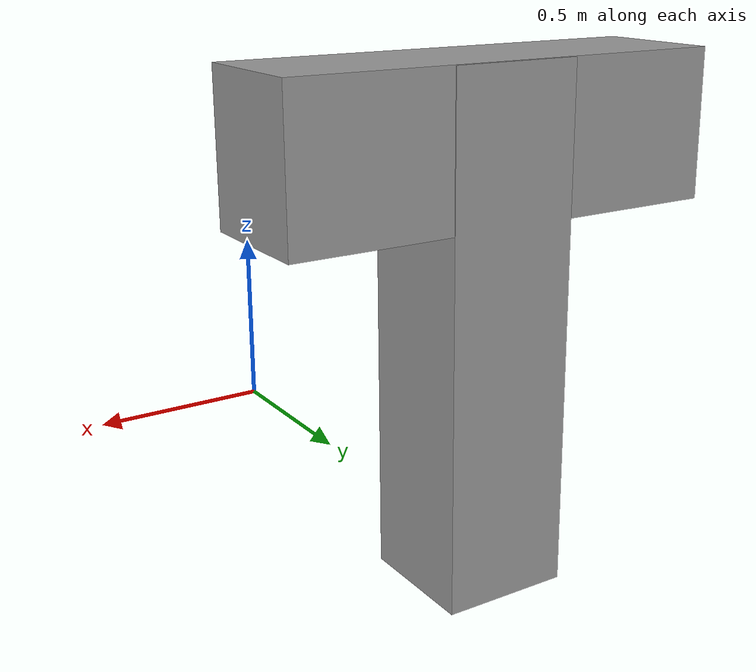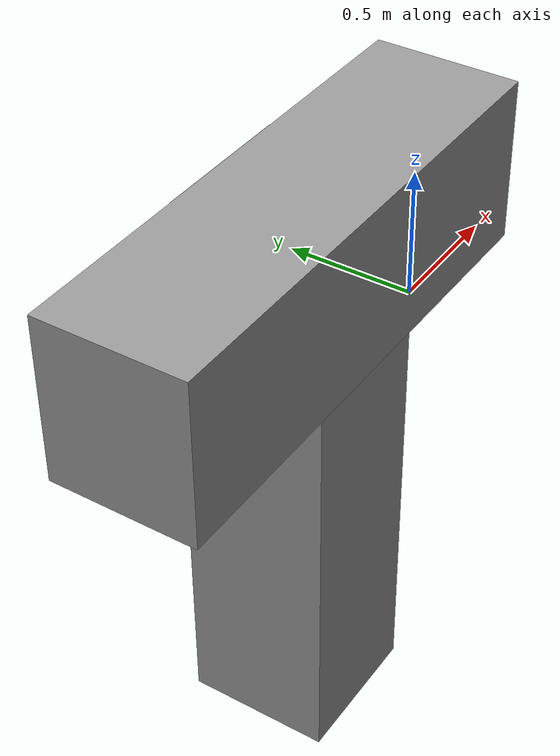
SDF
<?xml version='1.0'?>
<sdf version='1.7'>
  <model name='fira_build'>
    <link name='link_0'>
      <inertial>
        <mass>0.583841</mass>
        <inertia>
          <ixx>0.0973069</ixx>
          <ixy>0</ixy>
          <ixz>0</ixz>
          <iyy>0.0652376</iyy>
          <iyz>0</iyz>
          <izz>0.0652376</izz>
        </inertia>
        <pose>0 0 1 0 -0 0</pose>
      </inertial>
      <pose>-0.950505 -0.135192 0 0 -0 0</pose>
      <self_collide>0</self_collide>
      <kinematic>0</kinematic>
      <enable_wind>0</enable_wind>
      <gravity>1</gravity>
      <visual name='visual'>
        <pose>0 0 0 0 -0 0</pose>
        <geometry>
          <box>
            <size>0.5 0.5 2</size>
          </box>
        </geometry>
        <material>
          <lighting>1</lighting>
          <script>
            <uri>file://media/materials/scripts/gazebo.material</uri>
            <name>Gazebo/Grey</name>
          </script>
          <shader type='pixel'>
            <normal_map>__default__</normal_map>
          </shader>
          <ambient>0.3 0.3 0.3 1</ambient>
          <diffuse>0.7 0.7 0.7 1</diffuse>
          <specular>0.01 0.01 0.01 1</specular>
          <emissive>0 0 0 1</emissive>
        </material>
        <transparency>0</transparency>
        <cast_shadows>1</cast_shadows>
      </visual>
      <collision name='collision'>
        <laser_retro>0</laser_retro>
        <max_contacts>10</max_contacts>
        <pose>0 0 0 0 -0 0</pose>
        <geometry>
          <box>
            <size>0.583834 1 1</size>
          </box>
        </geometry>
        <surface>
          <friction>
            <ode>
              <mu>1</mu>
              <mu2>1</mu2>
              <fdir1>0 0 0</fdir1>
              <slip1>0</slip1>
              <slip2>0</slip2>
            </ode>
            <torsional>
              <coefficient>1</coefficient>
              <patch_radius>0</patch_radius>
              <surface_radius>0</surface_radius>
              <use_patch_radius>1</use_patch_radius>
              <ode>
                <slip>0</slip>
              </ode>
            </torsional>
          </friction>
          <bounce>
            <restitution_coefficient>0</restitution_coefficient>
            <threshold>1e+06</threshold>
          </bounce>
          <contact>
            <collide_without_contact>0</collide_without_contact>
            <collide_without_contact_bitmask>1</collide_without_contact_bitmask>
            <collide_bitmask>1</collide_bitmask>
            <ode>
              <soft_cfm>0</soft_cfm>
              <soft_erp>0.2</soft_erp>
              <kp>1e+13</kp>
              <kd>1</kd>
              <max_vel>0.01</max_vel>
              <min_depth>0</min_depth>
            </ode>
            <bullet>
              <split_impulse>1</split_impulse>
              <split_impulse_penetration_threshold>-0.01</split_impulse_penetration_threshold>
              <soft_cfm>0</soft_cfm>
              <soft_erp>0.2</soft_erp>
              <kp>1e+13</kp>
              <kd>1</kd>
            </bullet>
          </contact>
        </surface>
      </collision>
    </link>
    <link name='link_1_clone'>
      <inertial>
        <mass>1.18726</mass>
        <inertia>
          <ixx>0.211136</ixx>
          <ixy>0</ixy>
          <ixz>0</ixz>
          <iyy>0.482851</iyy>
          <iyz>0</iyz>
          <izz>0.321095</izz>
        </inertia>
        <pose>0 0 0 0 -0 0</pose>
      </inertial>
      <pose>-0.580291 -0.138089 0.718461 0 -0 0</pose>
      <self_collide>0</self_collide>
      <kinematic>0</kinematic>
      <enable_wind>0</enable_wind>
      <visual name='visual'>
        <pose>-0.366556 0 0 0 -0 0</pose>
        <geometry>
          <box>
            <size>1.73086 0.499 0.567406</size>
          </box>
        </geometry>
        <material>
          <lighting>1</lighting>
          <script>
            <uri>file://media/materials/scripts/gazebo.material</uri>
            <name>Gazebo/Grey</name>
          </script>
          <shader type='pixel'>
            <normal_map>__default__</normal_map>
          </shader>
          <ambient>0.3 0.3 0.3 1</ambient>
          <diffuse>0.7 0.7 0.7 1</diffuse>
          <specular>0.01 0.01 0.01 1</specular>
          <emissive>0 0 0 1</emissive>
        </material>
        <transparency>0</transparency>
        <cast_shadows>1</cast_shadows>
      </visual>
      <collision name='collision'>
        <laser_retro>0</laser_retro>
        <max_contacts>10</max_contacts>
        <pose>0 0 0 0 -0 0</pose>
        <geometry>
          <box>
            <size>1.73086 0.499551 1.37276</size>
          </box>
        </geometry>
        <surface>
          <friction>
            <ode>
              <mu>1</mu>
              <mu2>1</mu2>
              <fdir1>0 0 0</fdir1>
              <slip1>0</slip1>
              <slip2>0</slip2>
            </ode>
            <torsional>
              <coefficient>1</coefficient>
              <patch_radius>0</patch_radius>
              <surface_radius>0</surface_radius>
              <use_patch_radius>1</use_patch_radius>
              <ode>
                <slip>0</slip>
              </ode>
            </torsional>
          </friction>
          <bounce>
            <restitution_coefficient>0</restitution_coefficient>
            <threshold>1e+06</threshold>
          </bounce>
          <contact>
            <collide_without_contact>0</collide_without_contact>
            <collide_without_contact_bitmask>1</collide_without_contact_bitmask>
            <collide_bitmask>1</collide_bitmask>
            <ode>
              <soft_cfm>0</soft_cfm>
              <soft_erp>0.2</soft_erp>
              <kp>1e+13</kp>
              <kd>1</kd>
              <max_vel>0.01</max_vel>
              <min_depth>0</min_depth>
            </ode>
            <bullet>
              <split_impulse>1</split_impulse>
              <split_impulse_penetration_threshold>-0.01</split_impulse_penetration_threshold>
              <soft_cfm>0</soft_cfm>
              <soft_erp>0.2</soft_erp>
              <kp>1e+13</kp>
              <kd>1</kd>
            </bullet>
          </contact>
        </surface>
      </collision>
    </link>
    <joint name='link_0_JOINT_0' type='fixed'>
      <parent>link_0</parent>
      <child>link_1_clone</child>
      <pose>0 0 0 0 -0 0</pose>
      <physics>
        <ode>
          <limit>
            <cfm>0</cfm>
            <erp>0.2</erp>
          </limit>
          <suspension>
            <cfm>0</cfm>
            <erp>0.2</erp>
          </suspension>
        </ode>
      </physics>
    </joint>
    <static>1</static>
    <allow_auto_disable>1</allow_auto_disable>
  </model>
</sdf>
